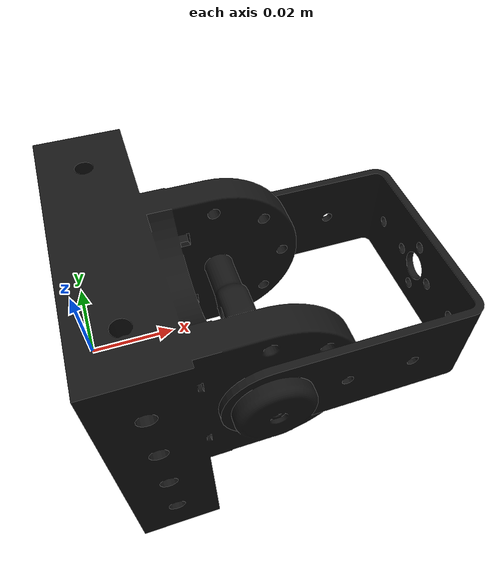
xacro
<?xml version="1.0"?>

<robot name="LIBRA-I_Manip" xmlns:xacro="http://www.ros.org/wiki/xacro">

    <!-- Includes -->
    <xacro:include filename="$(find libra)/models/common/common.urdf.xacro"/>
    <xacro:include filename="$(find libra)/models/assemblies/manip.urdf.xacro"/>

    <!-- Model Construction -->
    <link name="base_link"/>
    <xacro:spawn_manip_static parent="base_link"/>

</robot>

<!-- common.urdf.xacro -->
<robot xmlns:xacro="http://www.ros.org/wiki/xacro">

    <!-- Prevent duplicate inclusion -->
    <xacro:unless value="$(optenv COMMON_URDF_INCLUDED false)">
        <xacro:property name="COMMON_URDF_INCLUDED" value="true"/>

        <!-- ********************[ PROPERTIES ]******************** -->

        <xacro:property name="PI" value="3.14159265359"/>

        <!-- ********************[ MATERIALS ]******************** -->

        <!-- Colors: Monochrome -->
        <material name="black">
            <color rgba="${20/255} ${20/255} ${20/255} 1"/>
        </material>
        <material name="gray">
            <color rgba="${90/255} ${90/255} ${90/255} 1"/>
        </material>
        <material name="silver">
            <color rgba="${170/255} ${170/255} ${170/255} 1"/>
        </material>
        <material name="white">
            <color rgba="${250/255} ${250/255} ${250/255} 1"/>
        </material>

        <!-- Colors: Primary & Secondary -->
        <material name="red">
            <color rgba="${200/255} ${30/255} ${30/255} 1"/>
        </material>
        <material name="yellow">
            <color rgba="${225/255} ${200/255} ${40/255} 1"/>
        </material>
        <material name="blue">
            <color rgba="${40/255} ${110/255} ${200/255} 1"/>
        </material>

        <material name="orange">
            <color rgba="${220/255} ${110/255} ${40/255} 1"/>
        </material>
        <material name="green">
            <color rgba="${50/255} ${170/255} ${90/255} 1"/>
        </material>
        <material name="purple">
            <color rgba="${150/255} ${50/255} ${200/255} 1"/>
        </material>

        <!-- ********************[ MACROS ]******************** -->

        <xacro:macro name="box_inertia" params="m x y z">
            <inertial>
                <mass value="${m}"/>
                <inertia ixx="${(m/12) * (y*y + z*z)}" ixy="0.0" ixz="0.0"
                        iyy="${(m/12) * (x*x + z*z)}" iyz="0.0"
                        izz="${(m/12) * (x*x + y*y)}"/>
            </inertial>
        </xacro:macro>

        <xacro:macro name="cylinder_inertia" params="m r h">
            <inertial>
                <mass value="${m}"/>
                <inertia ixx="${(m/12) * (3*r*r + h*h)}" ixy = "0" ixz = "0"
                        iyy="${(m/12) * (3*r*r + h*h)}" iyz = "0"
                        izz="${(m/2) * (r*r)}"/>
            </inertial>
        </xacro:macro>

        <xacro:macro name="sphere_inertia" params="m r">
            <inertial>
                <mass value="${m}"/>
                <inertia ixx="${(2/5) * m * (r*r)}" ixy="0.0" ixz="0.0"
                        iyy="${(2/5) * m * (r*r)}" iyz="0.0"
                        izz="${(2/5) * m * (r*r)}"/>
            </inertial>
        </xacro:macro>

    </xacro:unless>
</robot>

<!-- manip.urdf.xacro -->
<robot xmlns:xacro="http://www.ros.org/wiki/xacro">

    <!-- Definition #1: 3-Servo Manipulator -->
    <xacro:macro name="spawn_manip" params="parent">

        <!-- ********************[ PROPERTIES ]******************** -->

        <!-- Servo Mount (arm tip) -->
        <xacro:property name="d_servo_mount_L" value="0.100"/>
        <xacro:property name="d_servo_mount_W" value="0.070"/>
        <xacro:property name="d_servo_mount_H" value="0.0935"/>
        <xacro:property name="m_servo_mount" value="0.170"/>

        <!-- Servo -->
        <xacro:property name="d_servo_L" value="0.054"/>
        <xacro:property name="d_servo_W" value="0.0462"/>
        <xacro:property name="d_servo_H" value="0.020"/>

        <!-- Servo w/ Bracket -->
        <xacro:property name="d_servo_bracket_L" value="0.058"/>
        <xacro:property name="d_servo_bracket_W" value="0.0493"/>
        <xacro:property name="d_servo_bracket_H" value="0.025"/>

        <xacro:property name="m_servo" value="0.039"/>

        <!-- Sensor Mounting Bracket -->
        <xacro:property name="d_sensor_bracket_L" value="0.065"/>
        <xacro:property name="d_sensor_bracket_W" value="0.025"/>
        <xacro:property name="d_sensor_bracket_H" value="0.055"/>
        <xacro:property name="m_sensor_bracket" value="0.0081"/>

        <!-- ********************[ LINKS ]******************** -->
        <!-- NOTE
            X = forward/red, Y = left/green, Z = upwards/blue
        -->

        <!-- Servo Mount (arm tip) -->
        <link name="servo_mount_link">
            <visual>
                <origin xyz="-${d_servo_mount_L/2} 0 ${d_servo_mount_H/2 - 0.002}" rpy="${PI/2} 0 ${PI/2}"/>
                <geometry>
                    <mesh filename="package://libra/meshes/mount-servos.stl" scale="0.001 0.001 0.001"/>
                </geometry>
                <material name="black"/>
            </visual>
            <collision>
                <origin xyz="0 0 0" rpy="0 0 0"/>
                <geometry>
                    <box size="${d_servo_mount_L} ${d_servo_mount_W} ${d_servo_mount_H}"/>
                </geometry>
            </collision>
            <xacro:box_inertia m="${m_servo_mount}" x="${d_servo_mount_L}" y="${d_servo_mount_W}" z="${d_servo_mount_H}"/>
        </link>
        <joint name="parent_to_servo_mount" type="fixed">
            <parent link="${parent}"/>
            <child link="servo_mount_link"/>
            <origin xyz="${d_servo_mount_L/2} 0 ${0.042 - d_servo_mount_H/2}" rpy="0 0 0"/>
        </joint>

        <!-- Servo Joint #1 -->
        <link name="MJ1_stator_link">
            <visual>
                <origin xyz="0.0104 -0.0156 0.002" rpy="${PI/2} 0 0"/>
                <geometry>
                    <mesh filename="package://libra/meshes/manip-j1.stl" scale="0.001 0.001 0.001"/>
                </geometry>
                <material name="purple"/>
            </visual>
            <collision>
                <origin xyz="0 0 0" rpy="0 0 0"/>
                <geometry>
                    <box size="${d_servo_L} ${d_servo_W} ${d_servo_H}"/>
                </geometry>
            </collision>
            <xacro:box_inertia m="${m_servo}" x="${d_servo_L}" y="${d_servo_W}" z="${d_servo_H}"/>
        </link>
        <joint name="servo_mount_to_MJ1_stator" type="fixed">
            <parent link="servo_mount_link"/>
            <child link="MJ1_stator_link"/>
            <origin xyz="${d_servo_mount_L/2 - 0.029} ${-d_servo_mount_W/2 + d_servo_W/2 - 0.0178} ${d_servo_mount_H/2 - 0.016}" rpy="0 0 0"/>
        </joint>

        <link name="MJ1_rotor_link"/>
        <joint name="MJ1" type="revolute">
            <parent link="MJ1_stator_link"/>
            <child link="MJ1_rotor_link"/>
            <origin xyz="${d_servo_L/2 - 0.01675} -${d_servo_W/2} ${d_servo_H/2 - 0.010}" rpy="0 0 0"/>
            <axis xyz="0 1 0"/>
            <limit lower="-${PI/2}" upper="${PI/2}" effort="50" velocity="1.5"/>
        </joint>

        <!-- Servo Joint #2 (w/ bracket) -->
        <link name="MJ2_stator_link">
            <visual>
                <origin xyz="-0.0104 -0.003 ${d_servo_bracket_H/2 + 0.0045}" rpy="0 0 ${PI}"/>
                <geometry>
                    <mesh filename="package://libra/meshes/manip-j2_3.stl" scale="0.001 0.001 0.001"/>
                </geometry>
                <material name="purple"/>
            </visual>
            <collision>
                <origin xyz="0 0 0" rpy="${PI/2} 0 0"/>
                <geometry>
                    <box size="${d_servo_bracket_L} ${d_servo_bracket_W} ${d_servo_bracket_H}"/>
                </geometry>
            </collision>
            <xacro:box_inertia m="${m_servo}" x="${d_servo_bracket_L}" y="${d_servo_bracket_W}" z="${d_servo_bracket_H}"/>
        </link>
        <joint name="MJ1_rotor_to_MJ2_stator" type="fixed">
            <parent link="MJ1_rotor_link"/>
            <child link="MJ2_stator_link"/>
            <origin xyz="${d_servo_bracket_L/2 - 0.0185} -${d_servo_bracket_H/2} ${d_servo_bracket_W/2 - 0.0248}" rpy="0 0 0"/>
        </joint>

        <link name="MJ2_rotor_link"/>
        <joint name="MJ2" type="revolute">
            <parent link="MJ2_stator_link"/>
            <child link="MJ2_rotor_link"/>
            <origin xyz="${-d_servo_bracket_L/2 + 0.01875} ${-d_servo_bracket_H/2 + 0.0115} ${d_servo_bracket_W/2}" rpy="0 0 0"/>
            <axis xyz="0 0 1"/>
            <limit lower="-${PI/2}" upper="${PI/2}" effort="50" velocity="1.5"/>
        </joint>

        <!-- Servo Joint #3 (w/ bracket) -->
        <link name="MJ3_stator_link">
            <visual>
                <origin xyz="0.0104 -${d_servo_bracket_W/2 - 0.0075} 0.003" rpy="${PI/2} 0 0"/>
                <geometry>
                    <mesh filename="package://libra/meshes/manip-j2_3.stl" scale="0.001 0.001 0.001"/>
                </geometry>
                <material name="purple"/>
            </visual>
            <collision>
                <origin xyz="0 0 0" rpy="${PI/2} 0 0"/>
                <geometry>
                    <box size="${d_servo_bracket_L} ${d_servo_bracket_H} ${d_servo_bracket_W}"/>
                </geometry>
            </collision>
            <xacro:box_inertia m="${m_servo}" x="${d_servo_bracket_L}" y="${d_servo_bracket_H}" z="${d_servo_bracket_W}"/>
        </link>
        <joint name="MJ2_rotor_to_MJ3_stator" type="fixed">
            <parent link="MJ2_rotor_link"/>
            <child link="MJ3_stator_link"/>
            <origin xyz="${d_servo_bracket_L/2 - 0.0185} ${d_servo_bracket_W/2 - 0.0245} ${d_servo_bracket_H/2}" rpy="0 0 0"/>
        </joint>

        <link name="MJ3_rotor_link"/>
        <joint name="MJ3" type="revolute">
            <parent link="MJ3_stator_link"/>
            <child link="MJ3_rotor_link"/>
            <origin xyz="${d_servo_bracket_L/2 - 0.01875} -${d_servo_bracket_W/2} ${d_servo_bracket_H/2 - 0.0115}" rpy="0 0 0"/>
            <axis xyz="0 1 0"/>
            <limit lower="-${PI/2}" upper="${PI/2}" effort="50" velocity="1.5"/>
        </joint>

        <!-- Sensor Mounting Bracket -->
        <link name="sensor_bracket_link">
            <visual>
                <origin xyz="${d_sensor_bracket_L/2} 0 0" rpy="${PI/2} 0 -${PI/2}"/>
                <geometry>
                    <mesh filename="package://libra/meshes/sensor_bracket.stl" scale="0.001 0.001 0.001"/>
                </geometry>
                <material name="black"/>
            </visual>
            <collision>
                <origin xyz="0 0 0" rpy="0 0 0"/>
                <geometry>
                    <box size="${d_sensor_bracket_L} ${d_sensor_bracket_H} ${d_sensor_bracket_W}"/>
                </geometry>
            </collision>
            <xacro:box_inertia m="${m_sensor_bracket}" x="${d_sensor_bracket_L}" y="${d_sensor_bracket_H}" z="${d_sensor_bracket_W}"/>
        </link>
        <joint name="MJ3_rotor_to_sensor_bracket" type="fixed">
            <parent link="MJ3_rotor_link"/>
            <child link="sensor_bracket_link"/>
            <origin xyz="${d_sensor_bracket_L/2 - 0.0125} ${d_sensor_bracket_W} 0" rpy="0 0 0"/>
        </joint>

        <!-- Outbound Link -->
        <link name="manip_out_link"/>
        <joint name="sensor_bracket_to_manip_out" type="fixed">
            <parent link="sensor_bracket_link"/>
            <child link="manip_out_link"/>
            <origin xyz="${d_sensor_bracket_L/2} 0 0" rpy="0 0 0"/>
        </joint>

        <!-- ********************[ GAZEBO CONFIG ]******************** -->

        <gazebo reference="servo_mount_link"><material>Gazebo/Black</material></gazebo>
        <gazebo reference="MJ1_stator_link"><material>Gazebo/Purple</material></gazebo>
        <gazebo reference="MJ2_stator_link"><material>Gazebo/Purple</material></gazebo>
        <gazebo reference="MJ3_stator_link"><material>Gazebo/Purple</material></gazebo>
        <gazebo reference="sensor_bracket_link"><material>Gazebo/Black</material></gazebo>

    </xacro:macro>

    <!-- Definition #2: Static Manipulator Mount -->
    <xacro:macro name="spawn_manip_static" params="parent">

        <!-- ********************[ PROPERTIES ]******************** -->

        <!-- Static Mount -->
        <xacro:property name="d_static_L" value="0.060"/>
        <xacro:property name="d_static_W" value="0.070"/>
        <xacro:property name="d_static_H" value="0.070"/>
        <xacro:property name="m_static" value="0.150"/>

        <!-- Sensor Mounting Bracket -->
        <xacro:property name="d_sensor_bracket_L" value="0.065"/>
        <xacro:property name="d_sensor_bracket_W" value="0.025"/>
        <xacro:property name="d_sensor_bracket_H" value="0.055"/>
        <xacro:property name="m_sensor_bracket" value="0.0081"/>

        <!-- ********************[ LINKS ]******************** -->
        <!-- NOTE
            X = forward/red, Y = left/green, Z = upwards/blue
        -->

        <!-- Static Mount -->
        <link name="static_mount_link">
            <visual>
                <origin xyz="${-d_static_L/2 + 0.0049} 0 0" rpy="${PI/2} 0 ${PI/2}"/>
                <geometry>
                    <mesh filename="package://libra/meshes/mount-static.stl" scale="0.001 0.001 0.001"/>
                </geometry>
                <material name="black"/>
            </visual>
            <collision>
                <origin xyz="0 0 0" rpy="0 0 0"/>
                <geometry>
                    <box size="${d_static_L} ${d_static_W} ${d_static_H}"/>
                </geometry>
            </collision>
            <xacro:box_inertia m="${m_static}" x="${d_static_L}" y="${d_static_W}" z="${d_static_H}"/>
        </link>
        <joint name="parent_to_static_mount" type="fixed">
            <parent link="${parent}"/>
            <child link="static_mount_link"/>
            <origin xyz="${d_static_L/2} 0 0" rpy="0 0 0"/>
        </joint>

        <link name="pseudo_rotor_link"/>
        <joint name="Static-Manip" type="revolute">
            <parent link="static_mount_link"/>
            <child link="pseudo_rotor_link"/>
            <origin xyz="${d_static_L/2 - 0.023} ${-d_static_W/2 + 0.01} 0" rpy="0 0 0"/>
            <axis xyz="0 1 0"/>
            <limit lower="-${PI/2}" upper="${PI/2}" effort="50" velocity="1.5"/>
        </joint>

        <!-- Sensor Mounting Bracket -->
        <link name="sensor_bracket_link">
            <visual>
                <origin xyz="${d_sensor_bracket_L/2} 0 0" rpy="${PI/2} 0 -${PI/2}"/>
                <geometry>
                    <mesh filename="package://libra/meshes/sensor_bracket.stl" scale="0.001 0.001 0.001"/>
                </geometry>
                <material name="black"/>
            </visual>
            <collision>
                <origin xyz="0 0 0" rpy="0 0 0"/>
                <geometry>
                    <box size="${d_sensor_bracket_L} ${d_sensor_bracket_H} ${d_sensor_bracket_W}"/>
                </geometry>
            </collision>
            <xacro:box_inertia m="${m_sensor_bracket}" x="${d_sensor_bracket_L}" y="${d_sensor_bracket_H}" z="${d_sensor_bracket_W}"/>
        </link>
        <joint name="pseudo_rotor_to_sensor_bracket" type="fixed">
            <parent link="pseudo_rotor_link"/>
            <child link="sensor_bracket_link"/>
            <origin xyz="${d_sensor_bracket_L/2 - 0.0125} ${d_sensor_bracket_W} 0" rpy="0 0 0"/>
        </joint>

        <!-- Outbound Link -->
        <link name="manip_out_link"/>
        <joint name="sensor_bracket_to_manip_out" type="fixed">
            <parent link="sensor_bracket_link"/>
            <child link="manip_out_link"/>
            <origin xyz="${d_sensor_bracket_L/2} 0 0" rpy="0 0 0"/>
        </joint>

        <!-- ********************[ GAZEBO CONFIG ]******************** -->

        <gazebo reference="static_mount_link"><material>Gazebo/Black</material></gazebo>
        <gazebo reference="sensor_bracket_link"><material>Gazebo/Black</material></gazebo>

    </xacro:macro>
</robot>
